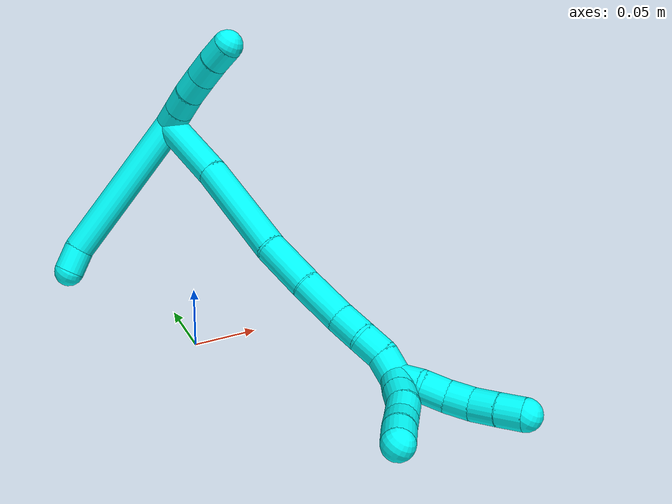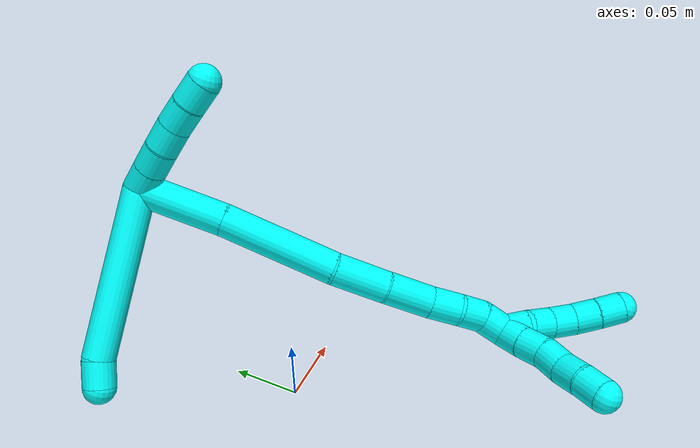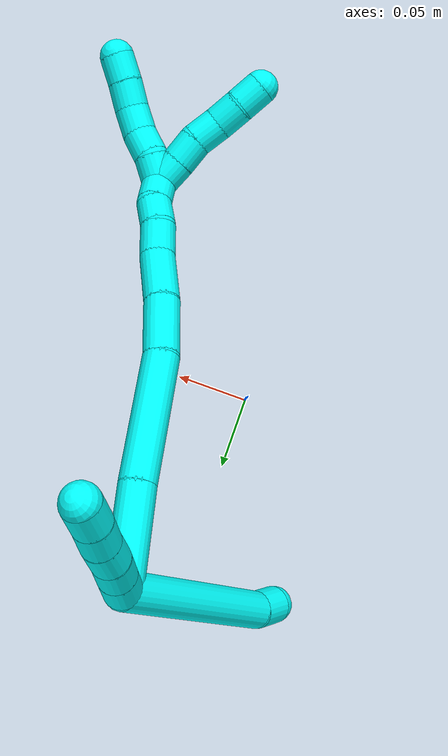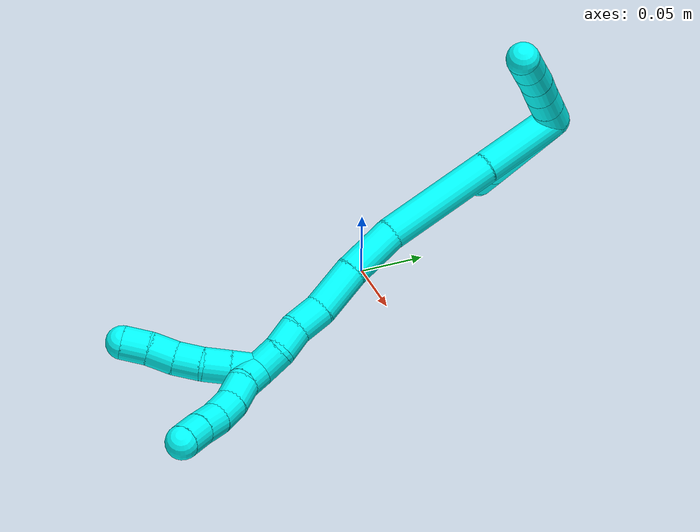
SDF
<sdf version="1.7">
 <world name="default">
  <model name="3">
   <static>0</static>
   <link name="3">
    <collision name="collision-cylinder-e_1_2_8">
     <pose>-0.021853 -0.010614 -0.059802 2.96594 -0.345378 -2.20662</pose>
     <geometry><cylinder><radius>0.0125</radius><length>0.129096</length></cylinder></geometry>
     <surface>
      <friction><ode><mu>1.16</mu><mu2>1.16</mu2><slip1>0</slip1><slip2>0</slip2></ode></friction>
      <contact><ode><kp>1e+06</kp><kd>1</kd><max_vel>0</max_vel><min_depth>0.001</min_depth></ode></contact>
     </surface>
    </collision>
    <visual name="visual-cylinder-e_1_2_8">
     <pose>-0.021853 -0.010614 -0.059802 2.96594 -0.345378 -2.20662</pose>
     <geometry><cylinder><radius>0.0125</radius><length>0.129096</length></cylinder></geometry>
     <material><ambient>0.003922 1 0.996078 1</ambient></material>
    </visual>
    <collision name="collision-cylinder-e_2_8_6">
     <pose>-0.046592 -0.025586 -0.128654 2.69274 -0.279757 -1.10537</pose>
     <geometry><cylinder><radius>0.0125</radius><length>0.020904</length></cylinder></geometry>
     <surface>
      <friction><ode><mu>1.16</mu><mu2>1.16</mu2><slip1>0</slip1><slip2>0</slip2></ode></friction>
      <contact><ode><kp>1e+06</kp><kd>1</kd><max_vel>0</max_vel><min_depth>0.001</min_depth></ode></contact>
     </surface>
    </collision>
    <visual name="visual-cylinder-e_2_8_6">
     <pose>-0.046592 -0.025586 -0.128654 2.69274 -0.279757 -1.10537</pose>
     <geometry><cylinder><radius>0.0125</radius><length>0.020904</length></cylinder></geometry>
     <material><ambient>0.003922 1 0.996078 1</ambient></material>
    </visual>
    <collision name="collision-cylinder-e_1_2_9">
     <pose>-0.001524 -0.002342 0.009602 0.239233 -0.152979 -0.018422</pose>
     <geometry><cylinder><radius>0.0125</radius><length>0.02</length></cylinder></geometry>
     <surface>
      <friction><ode><mu>1.16</mu><mu2>1.16</mu2><slip1>0</slip1><slip2>0</slip2></ode></friction>
      <contact><ode><kp>1e+06</kp><kd>1</kd><max_vel>0</max_vel><min_depth>0.001</min_depth></ode></contact>
     </surface>
    </collision>
    <visual name="visual-cylinder-e_1_2_9">
     <pose>-0.001524 -0.002342 0.009602 0.239233 -0.152979 -0.018422</pose>
     <geometry><cylinder><radius>0.0125</radius><length>0.02</length></cylinder></geometry>
     <material><ambient>0.003922 1 0.996078 1</ambient></material>
    </visual>
    <collision name="collision-cylinder-e_2_9_10">
     <pose>-0.004556 -0.007074 0.028796 0.244218 -0.151434 -0.018619</pose>
     <geometry><cylinder><radius>0.0125</radius><length>0.02</length></cylinder></geometry>
     <surface>
      <friction><ode><mu>1.16</mu><mu2>1.16</mu2><slip1>0</slip1><slip2>0</slip2></ode></friction>
      <contact><ode><kp>1e+06</kp><kd>1</kd><max_vel>0</max_vel><min_depth>0.001</min_depth></ode></contact>
     </surface>
    </collision>
    <visual name="visual-cylinder-e_2_9_10">
     <pose>-0.004556 -0.007074 0.028796 0.244218 -0.151434 -0.018619</pose>
     <geometry><cylinder><radius>0.0125</radius><length>0.02</length></cylinder></geometry>
     <material><ambient>0.003922 1 0.996078 1</ambient></material>
    </visual>
    <collision name="collision-cylinder-e_3_10_11">
     <pose>-0.0066 -0.011802 0.048096 0.236243 -0.053588 -0.006361</pose>
     <geometry><cylinder><radius>0.0125</radius><length>0.02</length></cylinder></geometry>
     <surface>
      <friction><ode><mu>1.16</mu><mu2>1.16</mu2><slip1>0</slip1><slip2>0</slip2></ode></friction>
      <contact><ode><kp>1e+06</kp><kd>1</kd><max_vel>0</max_vel><min_depth>0.001</min_depth></ode></contact>
     </surface>
    </collision>
    <visual name="visual-cylinder-e_3_10_11">
     <pose>-0.0066 -0.011802 0.048096 0.236243 -0.053588 -0.006361</pose>
     <geometry><cylinder><radius>0.0125</radius><length>0.02</length></cylinder></geometry>
     <material><ambient>0.003922 1 0.996078 1</ambient></material>
    </visual>
    <collision name="collision-cylinder-e_4_11_12">
     <pose>-0.008038 -0.017057 0.067327 0.297358 -0.090321 -0.013538</pose>
     <geometry><cylinder><radius>0.0125</radius><length>0.02</length></cylinder></geometry>
     <surface>
      <friction><ode><mu>1.16</mu><mu2>1.16</mu2><slip1>0</slip1><slip2>0</slip2></ode></friction>
      <contact><ode><kp>1e+06</kp><kd>1</kd><max_vel>0</max_vel><min_depth>0.001</min_depth></ode></contact>
     </surface>
    </collision>
    <visual name="visual-cylinder-e_4_11_12">
     <pose>-0.008038 -0.017057 0.067327 0.297358 -0.090321 -0.013538</pose>
     <geometry><cylinder><radius>0.0125</radius><length>0.02</length></cylinder></geometry>
     <material><ambient>0.003922 1 0.996078 1</ambient></material>
    </visual>
    <collision name="collision-cylinder-e_5_12_5">
     <pose>-0.00912 -0.022876 0.086417 0.294394 -0.018016 -0.002671</pose>
     <geometry><cylinder><radius>0.0125</radius><length>0.02</length></cylinder></geometry>
     <surface>
      <friction><ode><mu>1.16</mu><mu2>1.16</mu2><slip1>0</slip1><slip2>0</slip2></ode></friction>
      <contact><ode><kp>1e+06</kp><kd>1</kd><max_vel>0</max_vel><min_depth>0.001</min_depth></ode></contact>
     </surface>
    </collision>
    <visual name="visual-cylinder-e_5_12_5">
     <pose>-0.00912 -0.022876 0.086417 0.294394 -0.018016 -0.002671</pose>
     <geometry><cylinder><radius>0.0125</radius><length>0.02</length></cylinder></geometry>
     <material><ambient>0.003922 1 0.996078 1</ambient></material>
    </visual>
    <collision name="collision-cylinder-e_1_2_13">
     <pose>0.003412 -0.032789 0.000284 1.56213 0.103689 0.102796</pose>
     <geometry><cylinder><radius>0.0125</radius><length>0.065935</length></cylinder></geometry>
     <surface>
      <friction><ode><mu>1.16</mu><mu2>1.16</mu2><slip1>0</slip1><slip2>0</slip2></ode></friction>
      <contact><ode><kp>1e+06</kp><kd>1</kd><max_vel>0</max_vel><min_depth>0.001</min_depth></ode></contact>
     </surface>
    </collision>
    <visual name="visual-cylinder-e_1_2_13">
     <pose>0.003412 -0.032789 0.000284 1.56213 0.103689 0.102796</pose>
     <geometry><cylinder><radius>0.0125</radius><length>0.065935</length></cylinder></geometry>
     <material><ambient>0.003922 1 0.996078 1</ambient></material>
    </visual>
    <collision name="collision-cylinder-e_2_13_14">
     <pose>0.010236 -0.109936 -0.001485 1.61706 0.076671 0.080299</pose>
     <geometry><cylinder><radius>0.0125</radius><length>0.089072</length></cylinder></geometry>
     <surface>
      <friction><ode><mu>1.16</mu><mu2>1.16</mu2><slip1>0</slip1><slip2>0</slip2></ode></friction>
      <contact><ode><kp>1e+06</kp><kd>1</kd><max_vel>0</max_vel><min_depth>0.001</min_depth></ode></contact>
     </surface>
    </collision>
    <visual name="visual-cylinder-e_2_13_14">
     <pose>0.010236 -0.109936 -0.001485 1.61706 0.076671 0.080299</pose>
     <geometry><cylinder><radius>0.0125</radius><length>0.089072</length></cylinder></geometry>
     <material><ambient>0.003922 1 0.996078 1</ambient></material>
    </visual>
    <collision name="collision-cylinder-e_3_14_15">
     <pose>0.018624 -0.174515 -0.004335 1.61017 0.241146 0.250733</pose>
     <geometry><cylinder><radius>0.0125</radius><length>0.041679</length></cylinder></geometry>
     <surface>
      <friction><ode><mu>1.16</mu><mu2>1.16</mu2><slip1>0</slip1><slip2>0</slip2></ode></friction>
      <contact><ode><kp>1e+06</kp><kd>1</kd><max_vel>0</max_vel><min_depth>0.001</min_depth></ode></contact>
     </surface>
    </collision>
    <visual name="visual-cylinder-e_3_14_15">
     <pose>0.018624 -0.174515 -0.004335 1.61017 0.241146 0.250733</pose>
     <geometry><cylinder><radius>0.0125</radius><length>0.041679</length></cylinder></geometry>
     <material><ambient>0.003922 1 0.996078 1</ambient></material>
    </visual>
    <collision name="collision-cylinder-e_4_15_16">
     <pose>0.030042 -0.212381 -0.006333 1.63876 0.349265 0.373299</pose>
     <geometry><cylinder><radius>0.0125</radius><length>0.037645</length></cylinder></geometry>
     <surface>
      <friction><ode><mu>1.16</mu><mu2>1.16</mu2><slip1>0</slip1><slip2>0</slip2></ode></friction>
      <contact><ode><kp>1e+06</kp><kd>1</kd><max_vel>0</max_vel><min_depth>0.001</min_depth></ode></contact>
     </surface>
    </collision>
    <visual name="visual-cylinder-e_4_15_16">
     <pose>0.030042 -0.212381 -0.006333 1.63876 0.349265 0.373299</pose>
     <geometry><cylinder><radius>0.0125</radius><length>0.037645</length></cylinder></geometry>
     <material><ambient>0.003922 1 0.996078 1</ambient></material>
    </visual>
    <collision name="collision-cylinder-e_5_16_17">
     <pose>0.038712 -0.241723 -0.00665 1.49534 0.187761 0.174174</pose>
     <geometry><cylinder><radius>0.0125</radius><length>0.023878</length></cylinder></geometry>
     <surface>
      <friction><ode><mu>1.16</mu><mu2>1.16</mu2><slip1>0</slip1><slip2>0</slip2></ode></friction>
      <contact><ode><kp>1e+06</kp><kd>1</kd><max_vel>0</max_vel><min_depth>0.001</min_depth></ode></contact>
     </surface>
    </collision>
    <visual name="visual-cylinder-e_5_16_17">
     <pose>0.038712 -0.241723 -0.00665 1.49534 0.187761 0.174174</pose>
     <geometry><cylinder><radius>0.0125</radius><length>0.023878</length></cylinder></geometry>
     <material><ambient>0.003922 1 0.996078 1</ambient></material>
    </visual>
    <collision name="collision-cylinder-e_6_17_18">
     <pose>0.04493 -0.262707 -0.006152 1.61232 0.40539 0.422088</pose>
     <geometry><cylinder><radius>0.0125</radius><length>0.020233</length></cylinder></geometry>
     <surface>
      <friction><ode><mu>1.16</mu><mu2>1.16</mu2><slip1>0</slip1><slip2>0</slip2></ode></friction>
      <contact><ode><kp>1e+06</kp><kd>1</kd><max_vel>0</max_vel><min_depth>0.001</min_depth></ode></contact>
     </surface>
    </collision>
    <visual name="visual-cylinder-e_6_17_18">
     <pose>0.04493 -0.262707 -0.006152 1.61232 0.40539 0.422088</pose>
     <geometry><cylinder><radius>0.0125</radius><length>0.020233</length></cylinder></geometry>
     <material><ambient>0.003922 1 0.996078 1</ambient></material>
    </visual>
    <collision name="collision-cylinder-e_7_18_1">
     <pose>0.050415 -0.282346 -0.009147 1.81778 0.139219 0.178491</pose>
     <geometry><cylinder><radius>0.0125</radius><length>0.021557</length></cylinder></geometry>
     <surface>
      <friction><ode><mu>1.16</mu><mu2>1.16</mu2><slip1>0</slip1><slip2>0</slip2></ode></friction>
      <contact><ode><kp>1e+06</kp><kd>1</kd><max_vel>0</max_vel><min_depth>0.001</min_depth></ode></contact>
     </surface>
    </collision>
    <visual name="visual-cylinder-e_7_18_1">
     <pose>0.050415 -0.282346 -0.009147 1.81778 0.139219 0.178491</pose>
     <geometry><cylinder><radius>0.0125</radius><length>0.021557</length></cylinder></geometry>
     <material><ambient>0.003922 1 0.996078 1</ambient></material>
    </visual>
    <collision name="collision-cylinder-e_1_1_19">
     <pose>0.045878 -0.300573 -0.010506 1.41329 -0.647615 -0.558095</pose>
     <geometry><cylinder><radius>0.0125</radius><length>0.02</length></cylinder></geometry>
     <surface>
      <friction><ode><mu>1.16</mu><mu2>1.16</mu2><slip1>0</slip1><slip2>0</slip2></ode></friction>
      <contact><ode><kp>1e+06</kp><kd>1</kd><max_vel>0</max_vel><min_depth>0.001</min_depth></ode></contact>
     </surface>
    </collision>
    <visual name="visual-cylinder-e_1_1_19">
     <pose>0.045878 -0.300573 -0.010506 1.41329 -0.647615 -0.558095</pose>
     <geometry><cylinder><radius>0.0125</radius><length>0.02</length></cylinder></geometry>
     <material><ambient>0.003922 1 0.996078 1</ambient></material>
    </visual>
    <collision name="collision-cylinder-e_2_19_20">
     <pose>0.034148 -0.316476 -0.007489 1.35426 -0.606151 -0.492582</pose>
     <geometry><cylinder><radius>0.0125</radius><length>0.02</length></cylinder></geometry>
     <surface>
      <friction><ode><mu>1.16</mu><mu2>1.16</mu2><slip1>0</slip1><slip2>0</slip2></ode></friction>
      <contact><ode><kp>1e+06</kp><kd>1</kd><max_vel>0</max_vel><min_depth>0.001</min_depth></ode></contact>
     </surface>
    </collision>
    <visual name="visual-cylinder-e_2_19_20">
     <pose>0.034148 -0.316476 -0.007489 1.35426 -0.606151 -0.492582</pose>
     <geometry><cylinder><radius>0.0125</radius><length>0.02</length></cylinder></geometry>
     <material><ambient>0.003922 1 0.996078 1</ambient></material>
    </visual>
    <collision name="collision-cylinder-e_3_20_21">
     <pose>0.02128 -0.331469 -0.005533 1.54349 -0.79962 -0.780221</pose>
     <geometry><cylinder><radius>0.0125</radius><length>0.02</length></cylinder></geometry>
     <surface>
      <friction><ode><mu>1.16</mu><mu2>1.16</mu2><slip1>0</slip1><slip2>0</slip2></ode></friction>
      <contact><ode><kp>1e+06</kp><kd>1</kd><max_vel>0</max_vel><min_depth>0.001</min_depth></ode></contact>
     </surface>
    </collision>
    <visual name="visual-cylinder-e_3_20_21">
     <pose>0.02128 -0.331469 -0.005533 1.54349 -0.79962 -0.780221</pose>
     <geometry><cylinder><radius>0.0125</radius><length>0.02</length></cylinder></geometry>
     <material><ambient>0.003922 1 0.996078 1</ambient></material>
    </visual>
    <collision name="collision-cylinder-e_4_21_22">
     <pose>0.006538 -0.344693 -0.003464 1.27897 -0.858939 -0.656588</pose>
     <geometry><cylinder><radius>0.0125</radius><length>0.02</length></cylinder></geometry>
     <surface>
      <friction><ode><mu>1.16</mu><mu2>1.16</mu2><slip1>0</slip1><slip2>0</slip2></ode></friction>
      <contact><ode><kp>1e+06</kp><kd>1</kd><max_vel>0</max_vel><min_depth>0.001</min_depth></ode></contact>
     </surface>
    </collision>
    <visual name="visual-cylinder-e_4_21_22">
     <pose>0.006538 -0.344693 -0.003464 1.27897 -0.858939 -0.656588</pose>
     <geometry><cylinder><radius>0.0125</radius><length>0.02</length></cylinder></geometry>
     <material><ambient>0.003922 1 0.996078 1</ambient></material>
    </visual>
    <collision name="collision-cylinder-e_5_22_4">
     <pose>-0.008022 -0.358049 -0.000722 1.44992 -0.773835 -0.69281</pose>
     <geometry><cylinder><radius>0.0125</radius><length>0.02</length></cylinder></geometry>
     <surface>
      <friction><ode><mu>1.16</mu><mu2>1.16</mu2><slip1>0</slip1><slip2>0</slip2></ode></friction>
      <contact><ode><kp>1e+06</kp><kd>1</kd><max_vel>0</max_vel><min_depth>0.001</min_depth></ode></contact>
     </surface>
    </collision>
    <visual name="visual-cylinder-e_5_22_4">
     <pose>-0.008022 -0.358049 -0.000722 1.44992 -0.773835 -0.69281</pose>
     <geometry><cylinder><radius>0.0125</radius><length>0.02</length></cylinder></geometry>
     <material><ambient>0.003922 1 0.996078 1</ambient></material>
    </visual>
    <collision name="collision-cylinder-e_1_1_23">
     <pose>0.055315 -0.300913 -0.007185 1.06306 0.347327 0.205569</pose>
     <geometry><cylinder><radius>0.0125</radius><length>0.02</length></cylinder></geometry>
     <surface>
      <friction><ode><mu>1.16</mu><mu2>1.16</mu2><slip1>0</slip1><slip2>0</slip2></ode></friction>
      <contact><ode><kp>1e+06</kp><kd>1</kd><max_vel>0</max_vel><min_depth>0.001</min_depth></ode></contact>
     </surface>
    </collision>
    <visual name="visual-cylinder-e_1_1_23">
     <pose>0.055315 -0.300913 -0.007185 1.06306 0.347327 0.205569</pose>
     <geometry><cylinder><radius>0.0125</radius><length>0.02</length></cylinder></geometry>
     <material><ambient>0.003922 1 0.996078 1</ambient></material>
    </visual>
    <collision name="collision-cylinder-e_2_23_24">
     <pose>0.064252 -0.317109 -0.000225 1.27992 0.586354 0.442135</pose>
     <geometry><cylinder><radius>0.0125</radius><length>0.02</length></cylinder></geometry>
     <surface>
      <friction><ode><mu>1.16</mu><mu2>1.16</mu2><slip1>0</slip1><slip2>0</slip2></ode></friction>
      <contact><ode><kp>1e+06</kp><kd>1</kd><max_vel>0</max_vel><min_depth>0.001</min_depth></ode></contact>
     </surface>
    </collision>
    <visual name="visual-cylinder-e_2_23_24">
     <pose>0.064252 -0.317109 -0.000225 1.27992 0.586354 0.442135</pose>
     <geometry><cylinder><radius>0.0125</radius><length>0.02</length></cylinder></geometry>
     <material><ambient>0.003922 1 0.996078 1</ambient></material>
    </visual>
    <collision name="collision-cylinder-e_3_24_25">
     <pose>0.073483 -0.333451 0.006214 1.11977 0.378739 0.239122</pose>
     <geometry><cylinder><radius>0.0125</radius><length>0.02</length></cylinder></geometry>
     <surface>
      <friction><ode><mu>1.16</mu><mu2>1.16</mu2><slip1>0</slip1><slip2>0</slip2></ode></friction>
      <contact><ode><kp>1e+06</kp><kd>1</kd><max_vel>0</max_vel><min_depth>0.001</min_depth></ode></contact>
     </surface>
    </collision>
    <visual name="visual-cylinder-e_3_24_25">
     <pose>0.073483 -0.333451 0.006214 1.11977 0.378739 0.239122</pose>
     <geometry><cylinder><radius>0.0125</radius><length>0.02</length></cylinder></geometry>
     <material><ambient>0.003922 1 0.996078 1</ambient></material>
    </visual>
    <collision name="collision-cylinder-e_4_25_26">
     <pose>0.079766 -0.349888 0.015567 0.989746 0.261521 0.141706</pose>
     <geometry><cylinder><radius>0.0125</radius><length>0.02</length></cylinder></geometry>
     <surface>
      <friction><ode><mu>1.16</mu><mu2>1.16</mu2><slip1>0</slip1><slip2>0</slip2></ode></friction>
      <contact><ode><kp>1e+06</kp><kd>1</kd><max_vel>0</max_vel><min_depth>0.001</min_depth></ode></contact>
     </surface>
    </collision>
    <visual name="visual-cylinder-e_4_25_26">
     <pose>0.079766 -0.349888 0.015567 0.989746 0.261521 0.141706</pose>
     <geometry><cylinder><radius>0.0125</radius><length>0.02</length></cylinder></geometry>
     <material><ambient>0.003922 1 0.996078 1</ambient></material>
    </visual>
    <collision name="collision-cylinder-e_5_26_3">
     <pose>0.085538 -0.365862 0.026107 0.985242 0.324321 0.175175</pose>
     <geometry><cylinder><radius>0.0125</radius><length>0.02</length></cylinder></geometry>
     <surface>
      <friction><ode><mu>1.16</mu><mu2>1.16</mu2><slip1>0</slip1><slip2>0</slip2></ode></friction>
      <contact><ode><kp>1e+06</kp><kd>1</kd><max_vel>0</max_vel><min_depth>0.001</min_depth></ode></contact>
     </surface>
    </collision>
    <visual name="visual-cylinder-e_5_26_3">
     <pose>0.085538 -0.365862 0.026107 0.985242 0.324321 0.175175</pose>
     <geometry><cylinder><radius>0.0125</radius><length>0.02</length></cylinder></geometry>
     <material><ambient>0.003922 1 0.996078 1</ambient></material>
    </visual>
    <collision name="collision-sphere-3">
     <pose>0.088725 -0.373762 0.031346 0 -0 0</pose>
     <geometry><sphere><radius>0.0125</radius></sphere></geometry>
     <surface>
      <friction><ode><mu>1.16</mu><mu2>1.16</mu2><slip1>0</slip1><slip2>0</slip2></ode></friction>
      <contact><ode><kp>1e+06</kp><kd>1</kd><max_vel>0</max_vel><min_depth>0.001</min_depth></ode></contact>
     </surface>
    </collision>
    <visual name="visual-sphere-3">
     <pose>0.088725 -0.373762 0.031346 0 -0 0</pose>
     <geometry><sphere><radius>0.0125</radius></sphere></geometry>
     <material><ambient>0.003922 1 0.996078 1</ambient></material>
    </visual>
    <collision name="collision-sphere-26">
     <pose>0.082351 -0.357962 0.020869 0 -0 0</pose>
     <geometry><sphere><radius>0.0125</radius></sphere></geometry>
     <surface>
      <friction><ode><mu>1.16</mu><mu2>1.16</mu2><slip1>0</slip1><slip2>0</slip2></ode></friction>
      <contact><ode><kp>1e+06</kp><kd>1</kd><max_vel>0</max_vel><min_depth>0.001</min_depth></ode></contact>
     </surface>
    </collision>
    <visual name="visual-sphere-26">
     <pose>0.082351 -0.357962 0.020869 0 -0 0</pose>
     <geometry><sphere><radius>0.0125</radius></sphere></geometry>
     <material><ambient>0.003922 1 0.996078 1</ambient></material>
    </visual>
    <collision name="collision-sphere-25">
     <pose>0.07718 -0.341813 0.010264 0 -0 0</pose>
     <geometry><sphere><radius>0.0125</radius></sphere></geometry>
     <surface>
      <friction><ode><mu>1.16</mu><mu2>1.16</mu2><slip1>0</slip1><slip2>0</slip2></ode></friction>
      <contact><ode><kp>1e+06</kp><kd>1</kd><max_vel>0</max_vel><min_depth>0.001</min_depth></ode></contact>
     </surface>
    </collision>
    <visual name="visual-sphere-25">
     <pose>0.07718 -0.341813 0.010264 0 -0 0</pose>
     <geometry><sphere><radius>0.0125</radius></sphere></geometry>
     <material><ambient>0.003922 1 0.996078 1</ambient></material>
    </visual>
    <collision name="collision-sphere-24">
     <pose>0.069785 -0.325089 0.002164 0 -0 0</pose>
     <geometry><sphere><radius>0.0125</radius></sphere></geometry>
     <surface>
      <friction><ode><mu>1.16</mu><mu2>1.16</mu2><slip1>0</slip1><slip2>0</slip2></ode></friction>
      <contact><ode><kp>1e+06</kp><kd>1</kd><max_vel>0</max_vel><min_depth>0.001</min_depth></ode></contact>
     </surface>
    </collision>
    <visual name="visual-sphere-24">
     <pose>0.069785 -0.325089 0.002164 0 -0 0</pose>
     <geometry><sphere><radius>0.0125</radius></sphere></geometry>
     <material><ambient>0.003922 1 0.996078 1</ambient></material>
    </visual>
    <collision name="collision-sphere-23">
     <pose>0.058719 -0.309129 -0.002614 0 -0 0</pose>
     <geometry><sphere><radius>0.0125</radius></sphere></geometry>
     <surface>
      <friction><ode><mu>1.16</mu><mu2>1.16</mu2><slip1>0</slip1><slip2>0</slip2></ode></friction>
      <contact><ode><kp>1e+06</kp><kd>1</kd><max_vel>0</max_vel><min_depth>0.001</min_depth></ode></contact>
     </surface>
    </collision>
    <visual name="visual-sphere-23">
     <pose>0.058719 -0.309129 -0.002614 0 -0 0</pose>
     <geometry><sphere><radius>0.0125</radius></sphere></geometry>
     <material><ambient>0.003922 1 0.996078 1</ambient></material>
    </visual>
    <collision name="collision-sphere-4">
     <pose>-0.015011 -0.365149 0.000141 0 -0 0</pose>
     <geometry><sphere><radius>0.0125</radius></sphere></geometry>
     <surface>
      <friction><ode><mu>1.16</mu><mu2>1.16</mu2><slip1>0</slip1><slip2>0</slip2></ode></friction>
      <contact><ode><kp>1e+06</kp><kd>1</kd><max_vel>0</max_vel><min_depth>0.001</min_depth></ode></contact>
     </surface>
    </collision>
    <visual name="visual-sphere-4">
     <pose>-0.015011 -0.365149 0.000141 0 -0 0</pose>
     <geometry><sphere><radius>0.0125</radius></sphere></geometry>
     <material><ambient>0.003922 1 0.996078 1</ambient></material>
    </visual>
    <collision name="collision-sphere-22">
     <pose>-0.001034 -0.350949 -0.001584 0 -0 0</pose>
     <geometry><sphere><radius>0.0125</radius></sphere></geometry>
     <surface>
      <friction><ode><mu>1.16</mu><mu2>1.16</mu2><slip1>0</slip1><slip2>0</slip2></ode></friction>
      <contact><ode><kp>1e+06</kp><kd>1</kd><max_vel>0</max_vel><min_depth>0.001</min_depth></ode></contact>
     </surface>
    </collision>
    <visual name="visual-sphere-22">
     <pose>-0.001034 -0.350949 -0.001584 0 -0 0</pose>
     <geometry><sphere><radius>0.0125</radius></sphere></geometry>
     <material><ambient>0.003922 1 0.996078 1</ambient></material>
    </visual>
    <collision name="collision-sphere-21">
     <pose>0.014109 -0.338437 -0.005343 0 -0 0</pose>
     <geometry><sphere><radius>0.0125</radius></sphere></geometry>
     <surface>
      <friction><ode><mu>1.16</mu><mu2>1.16</mu2><slip1>0</slip1><slip2>0</slip2></ode></friction>
      <contact><ode><kp>1e+06</kp><kd>1</kd><max_vel>0</max_vel><min_depth>0.001</min_depth></ode></contact>
     </surface>
    </collision>
    <visual name="visual-sphere-21">
     <pose>0.014109 -0.338437 -0.005343 0 -0 0</pose>
     <geometry><sphere><radius>0.0125</radius></sphere></geometry>
     <material><ambient>0.003922 1 0.996078 1</ambient></material>
    </visual>
    <collision name="collision-sphere-20">
     <pose>0.028451 -0.324502 -0.005724 0 -0 0</pose>
     <geometry><sphere><radius>0.0125</radius></sphere></geometry>
     <surface>
      <friction><ode><mu>1.16</mu><mu2>1.16</mu2><slip1>0</slip1><slip2>0</slip2></ode></friction>
      <contact><ode><kp>1e+06</kp><kd>1</kd><max_vel>0</max_vel><min_depth>0.001</min_depth></ode></contact>
     </surface>
    </collision>
    <visual name="visual-sphere-20">
     <pose>0.028451 -0.324502 -0.005724 0 -0 0</pose>
     <geometry><sphere><radius>0.0125</radius></sphere></geometry>
     <material><ambient>0.003922 1 0.996078 1</ambient></material>
    </visual>
    <collision name="collision-sphere-11">
     <pose>-0.007136 -0.014139 0.057804 0 -0 0</pose>
     <geometry><sphere><radius>0.0125</radius></sphere></geometry>
     <surface>
      <friction><ode><mu>1.16</mu><mu2>1.16</mu2><slip1>0</slip1><slip2>0</slip2></ode></friction>
      <contact><ode><kp>1e+06</kp><kd>1</kd><max_vel>0</max_vel><min_depth>0.001</min_depth></ode></contact>
     </surface>
    </collision>
    <visual name="visual-sphere-11">
     <pose>-0.007136 -0.014139 0.057804 0 -0 0</pose>
     <geometry><sphere><radius>0.0125</radius></sphere></geometry>
     <material><ambient>0.003922 1 0.996078 1</ambient></material>
    </visual>
    <collision name="collision-sphere-10">
     <pose>-0.006065 -0.009464 0.038388 0 -0 0</pose>
     <geometry><sphere><radius>0.0125</radius></sphere></geometry>
     <surface>
      <friction><ode><mu>1.16</mu><mu2>1.16</mu2><slip1>0</slip1><slip2>0</slip2></ode></friction>
      <contact><ode><kp>1e+06</kp><kd>1</kd><max_vel>0</max_vel><min_depth>0.001</min_depth></ode></contact>
     </surface>
    </collision>
    <visual name="visual-sphere-10">
     <pose>-0.006065 -0.009464 0.038388 0 -0 0</pose>
     <geometry><sphere><radius>0.0125</radius></sphere></geometry>
     <material><ambient>0.003922 1 0.996078 1</ambient></material>
    </visual>
    <collision name="collision-sphere-6">
     <pose>-0.049478 -0.029945 -0.137705 0 -0 0</pose>
     <geometry><sphere><radius>0.0125</radius></sphere></geometry>
     <surface>
      <friction><ode><mu>1.16</mu><mu2>1.16</mu2><slip1>0</slip1><slip2>0</slip2></ode></friction>
      <contact><ode><kp>1e+06</kp><kd>1</kd><max_vel>0</max_vel><min_depth>0.001</min_depth></ode></contact>
     </surface>
    </collision>
    <visual name="visual-sphere-6">
     <pose>-0.049478 -0.029945 -0.137705 0 -0 0</pose>
     <geometry><sphere><radius>0.0125</radius></sphere></geometry>
     <material><ambient>0.003922 1 0.996078 1</ambient></material>
    </visual>
    <collision name="collision-sphere-9">
     <pose>-0.003048 -0.004684 0.019203 0 -0 0</pose>
     <geometry><sphere><radius>0.0125</radius></sphere></geometry>
     <surface>
      <friction><ode><mu>1.16</mu><mu2>1.16</mu2><slip1>0</slip1><slip2>0</slip2></ode></friction>
      <contact><ode><kp>1e+06</kp><kd>1</kd><max_vel>0</max_vel><min_depth>0.001</min_depth></ode></contact>
     </surface>
    </collision>
    <visual name="visual-sphere-9">
     <pose>-0.003048 -0.004684 0.019203 0 -0 0</pose>
     <geometry><sphere><radius>0.0125</radius></sphere></geometry>
     <material><ambient>0.003922 1 0.996078 1</ambient></material>
    </visual>
    <collision name="collision-sphere-2">
     <geometry><sphere><radius>0.0125</radius></sphere></geometry>
     <surface>
      <friction><ode><mu>1.16</mu><mu2>1.16</mu2><slip1>0</slip1><slip2>0</slip2></ode></friction>
      <contact><ode><kp>1e+06</kp><kd>1</kd><max_vel>0</max_vel><min_depth>0.001</min_depth></ode></contact>
     </surface>
    </collision>
    <visual name="visual-sphere-2">
     <geometry><sphere><radius>0.0125</radius></sphere></geometry>
     <material><ambient>0.003922 1 0.996078 1</ambient></material>
    </visual>
    <collision name="collision-sphere-19">
     <pose>0.039845 -0.308449 -0.009255 0 -0 0</pose>
     <geometry><sphere><radius>0.0125</radius></sphere></geometry>
     <surface>
      <friction><ode><mu>1.16</mu><mu2>1.16</mu2><slip1>0</slip1><slip2>0</slip2></ode></friction>
      <contact><ode><kp>1e+06</kp><kd>1</kd><max_vel>0</max_vel><min_depth>0.001</min_depth></ode></contact>
     </surface>
    </collision>
    <visual name="visual-sphere-19">
     <pose>0.039845 -0.308449 -0.009255 0 -0 0</pose>
     <geometry><sphere><radius>0.0125</radius></sphere></geometry>
     <material><ambient>0.003922 1 0.996078 1</ambient></material>
    </visual>
    <collision name="collision-sphere-8">
     <pose>-0.043706 -0.021227 -0.119603 0 -0 0</pose>
     <geometry><sphere><radius>0.0125</radius></sphere></geometry>
     <surface>
      <friction><ode><mu>1.16</mu><mu2>1.16</mu2><slip1>0</slip1><slip2>0</slip2></ode></friction>
      <contact><ode><kp>1e+06</kp><kd>1</kd><max_vel>0</max_vel><min_depth>0.001</min_depth></ode></contact>
     </surface>
    </collision>
    <visual name="visual-sphere-8">
     <pose>-0.043706 -0.021227 -0.119603 0 -0 0</pose>
     <geometry><sphere><radius>0.0125</radius></sphere></geometry>
     <material><ambient>0.003922 1 0.996078 1</ambient></material>
    </visual>
    <collision name="collision-sphere-12">
     <pose>-0.00894 -0.019975 0.076849 0 -0 0</pose>
     <geometry><sphere><radius>0.0125</radius></sphere></geometry>
     <surface>
      <friction><ode><mu>1.16</mu><mu2>1.16</mu2><slip1>0</slip1><slip2>0</slip2></ode></friction>
      <contact><ode><kp>1e+06</kp><kd>1</kd><max_vel>0</max_vel><min_depth>0.001</min_depth></ode></contact>
     </surface>
    </collision>
    <visual name="visual-sphere-12">
     <pose>-0.00894 -0.019975 0.076849 0 -0 0</pose>
     <geometry><sphere><radius>0.0125</radius></sphere></geometry>
     <material><ambient>0.003922 1 0.996078 1</ambient></material>
    </visual>
    <collision name="collision-sphere-5">
     <pose>-0.0093 -0.025777 0.095985 0 -0 0</pose>
     <geometry><sphere><radius>0.0125</radius></sphere></geometry>
     <surface>
      <friction><ode><mu>1.16</mu><mu2>1.16</mu2><slip1>0</slip1><slip2>0</slip2></ode></friction>
      <contact><ode><kp>1e+06</kp><kd>1</kd><max_vel>0</max_vel><min_depth>0.001</min_depth></ode></contact>
     </surface>
    </collision>
    <visual name="visual-sphere-5">
     <pose>-0.0093 -0.025777 0.095985 0 -0 0</pose>
     <geometry><sphere><radius>0.0125</radius></sphere></geometry>
     <material><ambient>0.003922 1 0.996078 1</ambient></material>
    </visual>
    <collision name="collision-sphere-13">
     <pose>0.006825 -0.065579 0.000568 0 -0 0</pose>
     <geometry><sphere><radius>0.0125</radius></sphere></geometry>
     <surface>
      <friction><ode><mu>1.16</mu><mu2>1.16</mu2><slip1>0</slip1><slip2>0</slip2></ode></friction>
      <contact><ode><kp>1e+06</kp><kd>1</kd><max_vel>0</max_vel><min_depth>0.001</min_depth></ode></contact>
     </surface>
    </collision>
    <visual name="visual-sphere-13">
     <pose>0.006825 -0.065579 0.000568 0 -0 0</pose>
     <geometry><sphere><radius>0.0125</radius></sphere></geometry>
     <material><ambient>0.003922 1 0.996078 1</ambient></material>
    </visual>
    <collision name="collision-sphere-14">
     <pose>0.013647 -0.154294 -0.003539 0 -0 0</pose>
     <geometry><sphere><radius>0.0125</radius></sphere></geometry>
     <surface>
      <friction><ode><mu>1.16</mu><mu2>1.16</mu2><slip1>0</slip1><slip2>0</slip2></ode></friction>
      <contact><ode><kp>1e+06</kp><kd>1</kd><max_vel>0</max_vel><min_depth>0.001</min_depth></ode></contact>
     </surface>
    </collision>
    <visual name="visual-sphere-14">
     <pose>0.013647 -0.154294 -0.003539 0 -0 0</pose>
     <geometry><sphere><radius>0.0125</radius></sphere></geometry>
     <material><ambient>0.003922 1 0.996078 1</ambient></material>
    </visual>
    <collision name="collision-sphere-15">
     <pose>0.023601 -0.194736 -0.005132 0 -0 0</pose>
     <geometry><sphere><radius>0.0125</radius></sphere></geometry>
     <surface>
      <friction><ode><mu>1.16</mu><mu2>1.16</mu2><slip1>0</slip1><slip2>0</slip2></ode></friction>
      <contact><ode><kp>1e+06</kp><kd>1</kd><max_vel>0</max_vel><min_depth>0.001</min_depth></ode></contact>
     </surface>
    </collision>
    <visual name="visual-sphere-15">
     <pose>0.023601 -0.194736 -0.005132 0 -0 0</pose>
     <geometry><sphere><radius>0.0125</radius></sphere></geometry>
     <material><ambient>0.003922 1 0.996078 1</ambient></material>
    </visual>
    <collision name="collision-sphere-16">
     <pose>0.036483 -0.230027 -0.007534 0 -0 0</pose>
     <geometry><sphere><radius>0.0125</radius></sphere></geometry>
     <surface>
      <friction><ode><mu>1.16</mu><mu2>1.16</mu2><slip1>0</slip1><slip2>0</slip2></ode></friction>
      <contact><ode><kp>1e+06</kp><kd>1</kd><max_vel>0</max_vel><min_depth>0.001</min_depth></ode></contact>
     </surface>
    </collision>
    <visual name="visual-sphere-16">
     <pose>0.036483 -0.230027 -0.007534 0 -0 0</pose>
     <geometry><sphere><radius>0.0125</radius></sphere></geometry>
     <material><ambient>0.003922 1 0.996078 1</ambient></material>
    </visual>
    <collision name="collision-sphere-17">
     <pose>0.04094 -0.253419 -0.005766 0 -0 0</pose>
     <geometry><sphere><radius>0.0125</radius></sphere></geometry>
     <surface>
      <friction><ode><mu>1.16</mu><mu2>1.16</mu2><slip1>0</slip1><slip2>0</slip2></ode></friction>
      <contact><ode><kp>1e+06</kp><kd>1</kd><max_vel>0</max_vel><min_depth>0.001</min_depth></ode></contact>
     </surface>
    </collision>
    <visual name="visual-sphere-17">
     <pose>0.04094 -0.253419 -0.005766 0 -0 0</pose>
     <geometry><sphere><radius>0.0125</radius></sphere></geometry>
     <material><ambient>0.003922 1 0.996078 1</ambient></material>
    </visual>
    <collision name="collision-sphere-18">
     <pose>0.04892 -0.271995 -0.006538 0 -0 0</pose>
     <geometry><sphere><radius>0.0125</radius></sphere></geometry>
     <surface>
      <friction><ode><mu>1.16</mu><mu2>1.16</mu2><slip1>0</slip1><slip2>0</slip2></ode></friction>
      <contact><ode><kp>1e+06</kp><kd>1</kd><max_vel>0</max_vel><min_depth>0.001</min_depth></ode></contact>
     </surface>
    </collision>
    <visual name="visual-sphere-18">
     <pose>0.04892 -0.271995 -0.006538 0 -0 0</pose>
     <geometry><sphere><radius>0.0125</radius></sphere></geometry>
     <material><ambient>0.003922 1 0.996078 1</ambient></material>
    </visual>
    <collision name="collision-sphere-1">
     <pose>0.051911 -0.292696 -0.011757 0 -0 0</pose>
     <geometry><sphere><radius>0.0125</radius></sphere></geometry>
     <surface>
      <friction><ode><mu>1.16</mu><mu2>1.16</mu2><slip1>0</slip1><slip2>0</slip2></ode></friction>
      <contact><ode><kp>1e+06</kp><kd>1</kd><max_vel>0</max_vel><min_depth>0.001</min_depth></ode></contact>
     </surface>
    </collision>
    <visual name="visual-sphere-1">
     <pose>0.051911 -0.292696 -0.011757 0 -0 0</pose>
     <geometry><sphere><radius>0.0125</radius></sphere></geometry>
     <material><ambient>0.003922 1 0.996078 1</ambient></material>
    </visual>
    <inertial>
     <pose>0.014314 -0.151859 -0.008484 0 -0 0</pose>
     <mass>0.75</mass>
     <inertia>
      <ixx>-0.000112</ixx>
      <ixy>0</ixy>
      <ixz>0</ixz>
      <iyy>-4e-05</iyy>
      <iyz>0</iyz>
      <izz>0.000204</izz>
     </inertia>
    </inertial>
   </link>
   <pose>0.034176 0.140756 0.123913 0.288705 0.394059 0.237338</pose>
  </model>
 </world>
</sdf>
